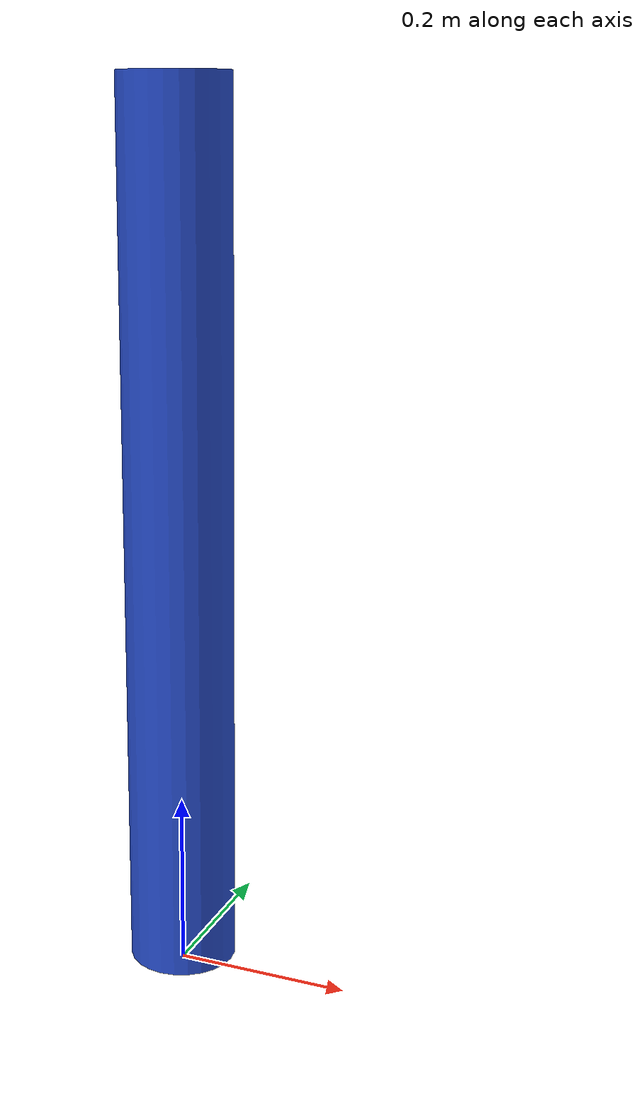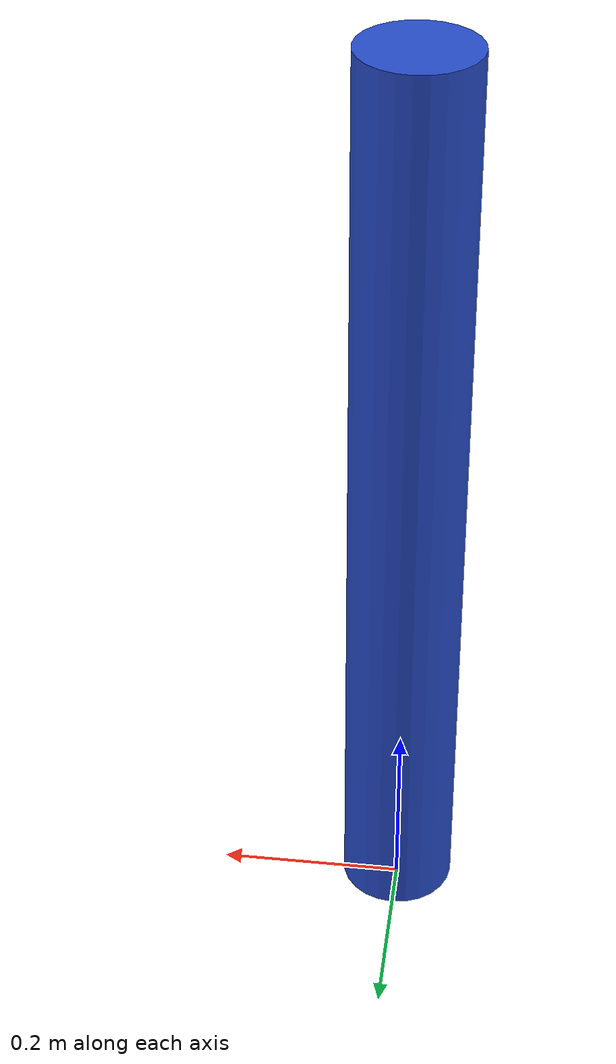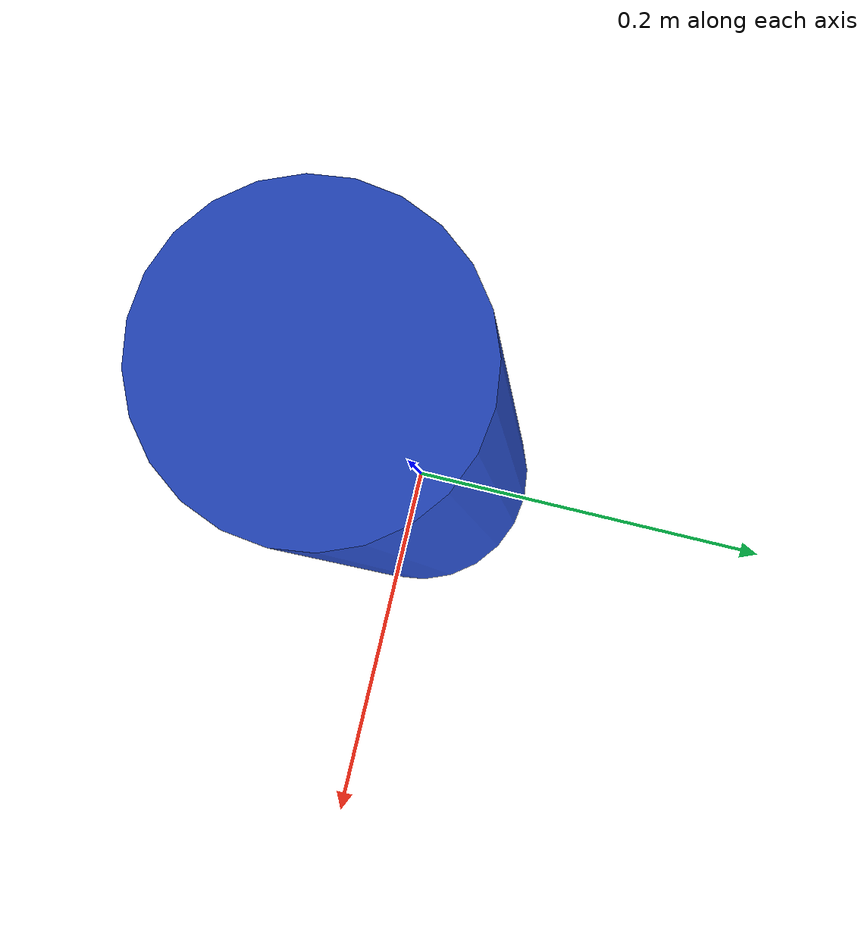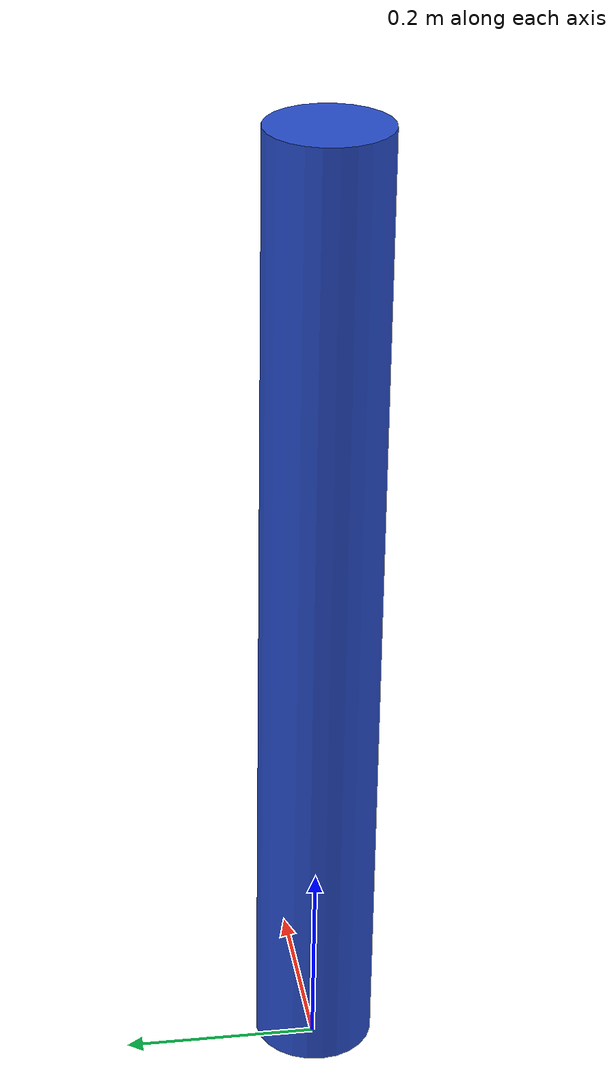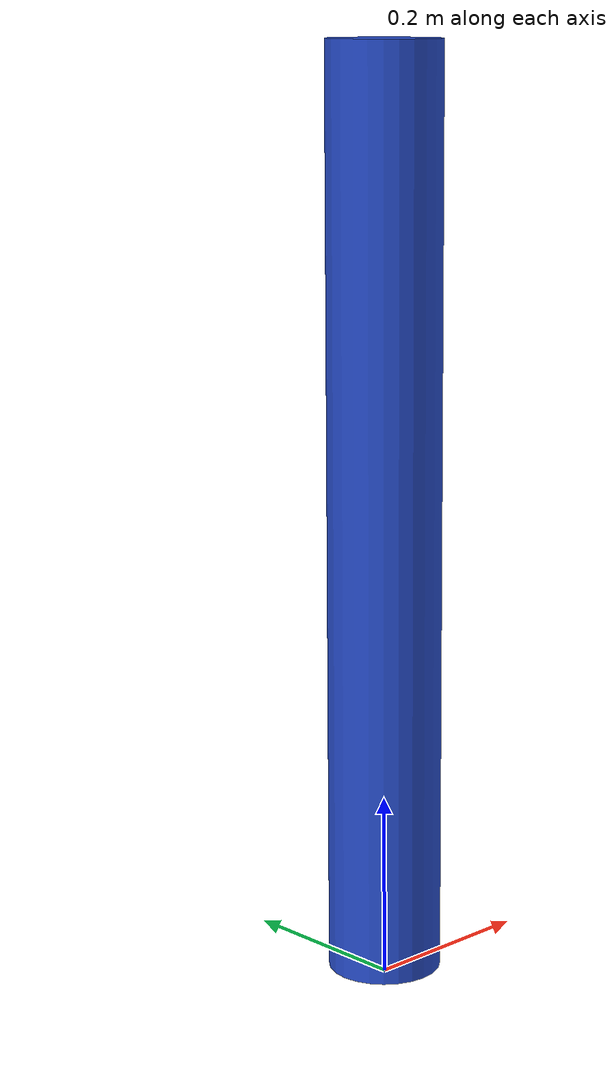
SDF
<?xml version='1.0'?>
<sdf version='1.6'>
  <model name='BluePilar1m'>
    <link name='link_0'>
      <pose frame=''>0 0 0.51 0 -0 0</pose>
      <inertial>
        <mass>0.0149192</mass>
        <inertia>
          <ixx>0.00125717</ixx>
          <ixy>0</ixy>
          <ixz>0</ixz>
          <iyy>0.00125717</iyy>
          <iyz>0</iyz>
          <izz>2.78227e-05</izz>
        </inertia>
        <pose frame=''>0 0 0 0 -0 0</pose>
      </inertial>
      <visual name='visual'>
        <pose frame=''>0 0 0 0 -0 0</pose>
        <geometry>
          <cylinder>
            <radius>0.0610719</radius>
            <length>1</length>
          </cylinder>
        </geometry>
        <material>
          <lighting>1</lighting>
          <script>
            <uri>file://media/materials/scripts/gazebo.material</uri>
            <name>Gazebo/Blue</name>
          </script>
          <ambient>0 0 1 0</ambient>
          <diffuse>0 0 1 0</diffuse>
          <specular>0.1 0.1 0.1 1</specular>
          <emissive>0 0 0 1</emissive>
        </material>
        <cast_shadows>1</cast_shadows>
        <transparency>0</transparency>
      </visual>
      <collision name='collision'>
        <laser_retro>0</laser_retro>
        <max_contacts>10</max_contacts>
        <pose frame=''>0 0 0 0 -0 0</pose>
        <geometry>
          <cylinder>
            <radius>0.061072</radius>
            <length>1</length>
          </cylinder>
        </geometry>
        <surface>
          <friction>
            <ode>
              <mu>1</mu>
              <mu2>1</mu2>
              <fdir1>0 0 0</fdir1>
              <slip1>0</slip1>
              <slip2>0</slip2>
            </ode>
            <torsional>
              <coefficient>1</coefficient>
              <patch_radius>0</patch_radius>
              <surface_radius>0</surface_radius>
              <use_patch_radius>1</use_patch_radius>
              <ode>
                <slip>0</slip>
              </ode>
            </torsional>
          </friction>
          <bounce>
            <restitution_coefficient>0</restitution_coefficient>
            <threshold>1e+06</threshold>
          </bounce>
          <contact>
            <collide_without_contact>0</collide_without_contact>
            <collide_without_contact_bitmask>1</collide_without_contact_bitmask>
            <collide_bitmask>1</collide_bitmask>
            <ode>
              <soft_cfm>0</soft_cfm>
              <soft_erp>0.2</soft_erp>
              <kp>1e+13</kp>
              <kd>1</kd>
              <max_vel>0.01</max_vel>
              <min_depth>0</min_depth>
            </ode>
            <bullet>
              <split_impulse>1</split_impulse>
              <split_impulse_penetration_threshold>-0.01</split_impulse_penetration_threshold>
              <soft_cfm>0</soft_cfm>
              <soft_erp>0.2</soft_erp>
              <kp>1e+13</kp>
              <kd>1</kd>
            </bullet>
          </contact>
        </surface>
      </collision>
    </link>
    <static>1</static>
    <allow_auto_disable>0</allow_auto_disable>
  </model>
</sdf>
